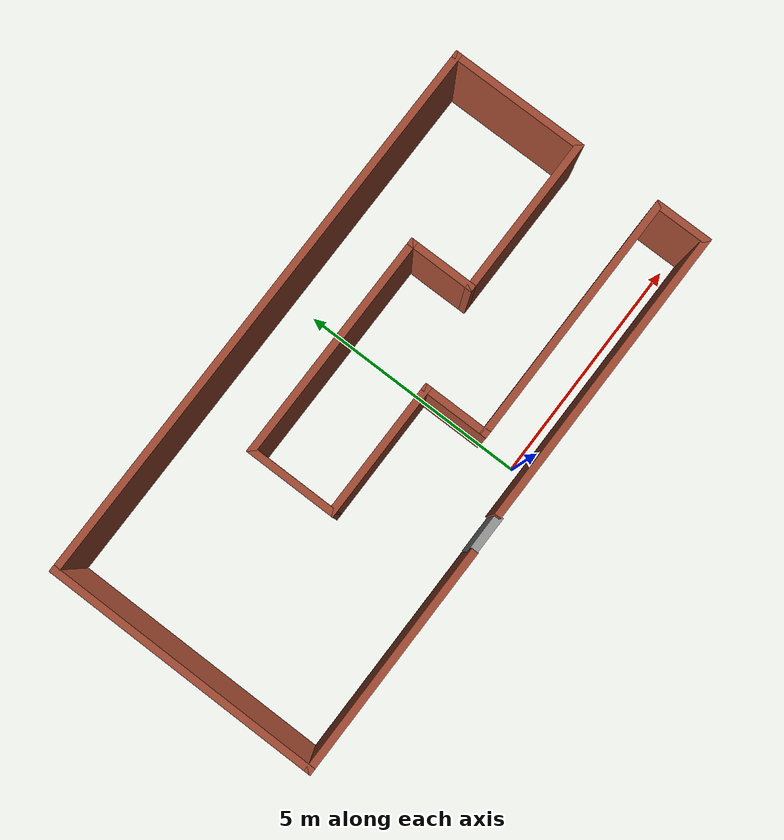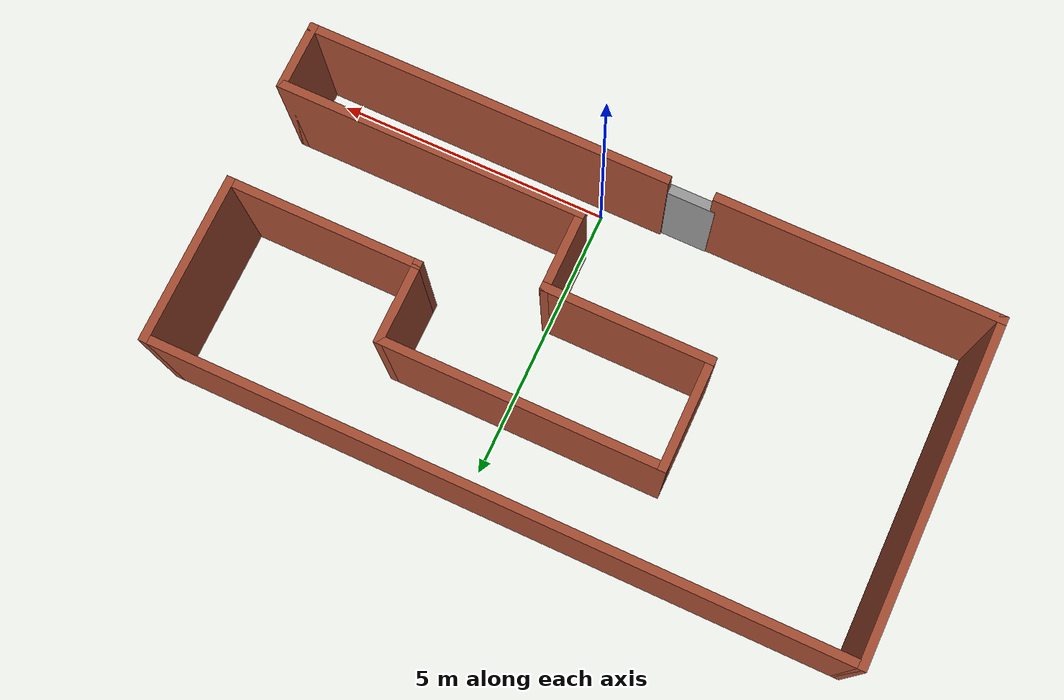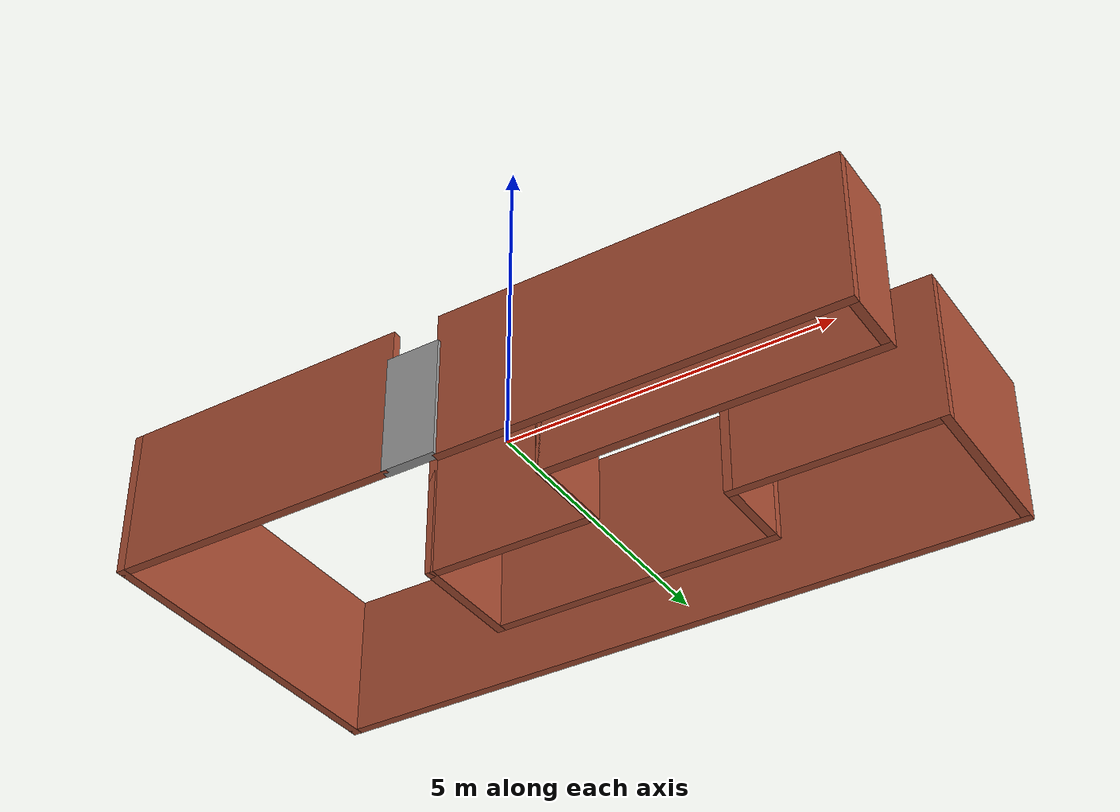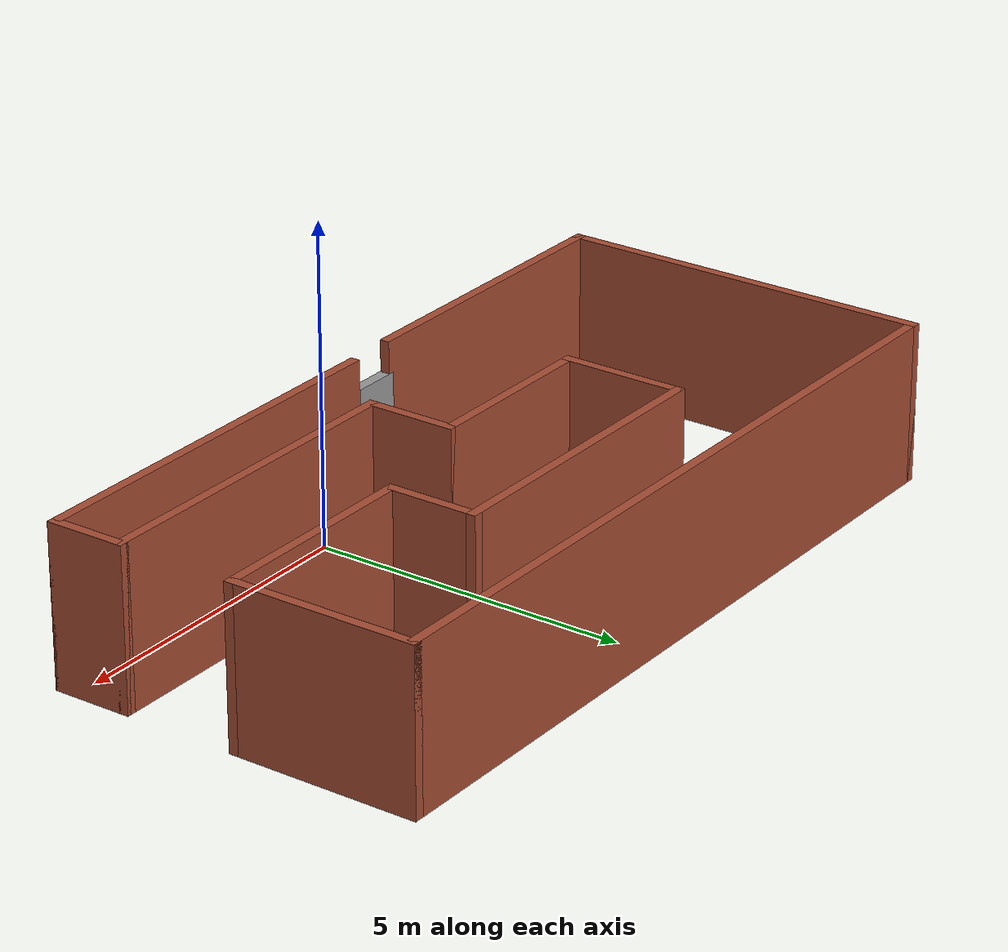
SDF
<?xml version='1.0'?>
<sdf version='1.6'>
  <model name='my_room'>
    <pose frame=''>-0.692338 2.64949 0 0 -0 0</pose>
    <link name='Door_0'>
      <collision name='Door_0_Collision'>
        <geometry>
          <box>
            <size>0.9 0.17 2</size>
          </box>
        </geometry>
        <pose frame=''>0 0 1 0 -0 0</pose>
      </collision>
      <visual name='Door_0_Visual'>
        <pose frame=''>0 0 1 0 -0 0</pose>
        <geometry>
          <box>
            <size>0.9 0.17 2</size>
          </box>
        </geometry>
        <material>
          <script>
            <uri>file://media/materials/scripts/gazebo.material</uri>
            <name>Gazebo/Grey</name>
          </script>
        </material>
      </visual>
      <pose frame=''>-0.763575 -2.925 0 0 -0 0</pose>
    </link>
    <link name='Wall_10'>
      <collision name='Wall_10_Collision'>
        <geometry>
          <box>
            <size>2 0.15 2.5</size>
          </box>
        </geometry>
        <pose frame=''>0 0 1.25 0 -0 0</pose>
      </collision>
      <visual name='Wall_10_Visual'>
        <pose frame=''>0 0 1.25 0 -0 0</pose>
        <geometry>
          <box>
            <size>2 0.15 2.5</size>
          </box>
        </geometry>
        <material>
          <script>
            <uri>file://media/materials/scripts/gazebo.material</uri>
            <name>Gazebo/Bricks</name>
          </script>
          <ambient>1 1 1 1</ambient>
        </material>
      </visual>
      <pose frame=''>-2.15 0.5 0 0 0 -1.5708</pose>
    </link>
    <link name='Wall_11'>
      <collision name='Wall_11_Collision'>
        <geometry>
          <box>
            <size>3 0.15 2.5</size>
          </box>
        </geometry>
        <pose frame=''>0 0 1.25 0 -0 0</pose>
      </collision>
      <visual name='Wall_11_Visual'>
        <pose frame=''>0 0 1.25 0 -0 0</pose>
        <geometry>
          <box>
            <size>3 0.15 2.5</size>
          </box>
        </geometry>
        <material>
          <script>
            <uri>file://media/materials/scripts/gazebo.material</uri>
            <name>Gazebo/Bricks</name>
          </script>
          <ambient>1 1 1 1</ambient>
        </material>
      </visual>
      <pose frame=''>-0.725 -0.425 0 0 -0 0</pose>
    </link>
    <link name='Wall_12'>
      <collision name='Wall_12_Collision'>
        <geometry>
          <box>
            <size>1.5 0.15 2.5</size>
          </box>
        </geometry>
        <pose frame=''>0 0 1.25 0 -0 0</pose>
      </collision>
      <visual name='Wall_12_Visual'>
        <pose frame=''>0 0 1.25 0 -0 0</pose>
        <geometry>
          <box>
            <size>1.5 0.15 2.5</size>
          </box>
        </geometry>
        <material>
          <script>
            <uri>file://media/materials/scripts/gazebo.material</uri>
            <name>Gazebo/Bricks</name>
          </script>
          <ambient>1 1 1 1</ambient>
        </material>
      </visual>
      <pose frame=''>0.7 -1.1 0 0 0 -1.5708</pose>
    </link>
    <link name='Wall_13'>
      <collision name='Wall_13_Collision'>
        <geometry>
          <box>
            <size>5.5 0.15 2.5</size>
          </box>
        </geometry>
        <pose frame=''>0 0 1.25 0 -0 0</pose>
      </collision>
      <visual name='Wall_13_Visual'>
        <pose frame=''>0 0 1.25 0 -0 0</pose>
        <geometry>
          <box>
            <size>5.5 0.15 2.5</size>
          </box>
        </geometry>
        <material>
          <script>
            <uri>file://media/materials/scripts/gazebo.material</uri>
            <name>Gazebo/Bricks</name>
          </script>
          <ambient>1 1 1 1</ambient>
        </material>
      </visual>
      <pose frame=''>3.375 -1.775 0 0 -0 0</pose>
    </link>
    <link name='Wall_14'>
      <collision name='Wall_14_Collision'>
        <geometry>
          <box>
            <size>1.25 0.15 2.5</size>
          </box>
        </geometry>
        <pose frame=''>0 0 1.25 0 -0 0</pose>
      </collision>
      <visual name='Wall_14_Visual'>
        <pose frame=''>0 0 1.25 0 -0 0</pose>
        <geometry>
          <box>
            <size>1.25 0.15 2.5</size>
          </box>
        </geometry>
        <material>
          <script>
            <uri>file://media/materials/scripts/gazebo.material</uri>
            <name>Gazebo/Bricks</name>
          </script>
          <ambient>1 1 1 1</ambient>
        </material>
      </visual>
      <pose frame=''>6.05 -2.325 0 0 0 -1.5708</pose>
    </link>
    <link name='Wall_15'>
      <collision name='Wall_15_Collision'>
        <geometry>
          <box>
            <size>6.5 0.15 2.5</size>
          </box>
        </geometry>
        <pose frame=''>0 0 1.25 0 -0 0</pose>
      </collision>
      <visual name='Wall_15_Visual'>
        <pose frame=''>0 0 1.25 0 -0 0</pose>
        <geometry>
          <box>
            <size>6.5 0.15 2.5</size>
          </box>
        </geometry>
        <material>
          <script>
            <uri>file://media/materials/scripts/gazebo.material</uri>
            <name>Gazebo/Bricks</name>
          </script>
          <ambient>1 1 1 1</ambient>
        </material>
      </visual>
      <pose frame=''>2.875 -2.875 0 0 -0 3.14159</pose>
    </link>
    <link name='Wall_3'>
      <collision name='Wall_3_Collision'>
        <geometry>
          <box>
            <size>5 0.15 2.5</size>
          </box>
        </geometry>
        <pose frame=''>0 0 1.25 0 -0 0</pose>
      </collision>
      <visual name='Wall_3_Visual'>
        <pose frame=''>0 0 1.25 0 -0 0</pose>
        <geometry>
          <box>
            <size>5 0.15 2.5</size>
          </box>
        </geometry>
        <material>
          <script>
            <uri>file://media/materials/scripts/gazebo.material</uri>
            <name>Gazebo/Bricks</name>
          </script>
          <ambient>0.996078 0.47451 0.0196078 1</ambient>
        </material>
      </visual>
      <pose frame=''>-3.625 -2.925 0 0 -0 3.14159</pose>
    </link>
    <link name='Wall_4'>
      <collision name='Wall_4_Collision'>
        <geometry>
          <box>
            <size>6 0.15 2.5</size>
          </box>
        </geometry>
        <pose frame=''>0 0 1.25 0 -0 0</pose>
      </collision>
      <visual name='Wall_4_Visual'>
        <pose frame=''>0 0 1.25 0 -0 0</pose>
        <geometry>
          <box>
            <size>6 0.15 2.5</size>
          </box>
        </geometry>
        <material>
          <script>
            <uri>file://media/materials/scripts/gazebo.material</uri>
            <name>Gazebo/Bricks</name>
          </script>
          <ambient>1 1 1 1</ambient>
        </material>
      </visual>
      <pose frame=''>-6.05 0 0 0 -0 1.5708</pose>
    </link>
    <link name='Wall_5'>
      <collision name='Wall_5_Collision'>
        <geometry>
          <box>
            <size>12.25 0.15 2.5</size>
          </box>
        </geometry>
        <pose frame=''>0 0 1.25 0 -0 0</pose>
      </collision>
      <visual name='Wall_5_Visual'>
        <pose frame=''>0 0 1.25 0 -0 0</pose>
        <geometry>
          <box>
            <size>12.25 0.15 2.5</size>
          </box>
        </geometry>
        <material>
          <script>
            <uri>file://media/materials/scripts/gazebo.material</uri>
            <name>Gazebo/Bricks</name>
          </script>
          <ambient>1 1 1 1</ambient>
        </material>
      </visual>
      <pose frame=''>0 2.925 0 0 -0 0</pose>
    </link>
    <link name='Wall_6'>
      <collision name='Wall_6_Collision'>
        <geometry>
          <box>
            <size>3 0.15 2.5</size>
          </box>
        </geometry>
        <pose frame=''>0 0 1.25 0 -0 0</pose>
      </collision>
      <visual name='Wall_6_Visual'>
        <pose frame=''>0 0 1.25 0 -0 0</pose>
        <geometry>
          <box>
            <size>3 0.15 2.5</size>
          </box>
        </geometry>
        <material>
          <script>
            <uri>file://media/materials/scripts/gazebo.material</uri>
            <name>Gazebo/Bricks</name>
          </script>
          <ambient>1 1 1 1</ambient>
        </material>
      </visual>
      <pose frame=''>6.05 1.5 0 0 0 -1.5708</pose>
    </link>
    <link name='Wall_7'>
      <collision name='Wall_7_Collision'>
        <geometry>
          <box>
            <size>3.5 0.15 2.5</size>
          </box>
        </geometry>
        <pose frame=''>0 0 1.25 0 -0 0</pose>
      </collision>
      <visual name='Wall_7_Visual'>
        <pose frame=''>0 0 1.25 0 -0 0</pose>
        <geometry>
          <box>
            <size>3.5 0.15 2.5</size>
          </box>
        </geometry>
        <material>
          <script>
            <uri>file://media/materials/scripts/gazebo.material</uri>
            <name>Gazebo/Bricks</name>
          </script>
          <ambient>1 1 1 1</ambient>
        </material>
      </visual>
      <pose frame=''>4.375 0.075 0 0 -0 3.14159</pose>
    </link>
    <link name='Wall_8'>
      <collision name='Wall_8_Collision'>
        <geometry>
          <box>
            <size>1.5 0.15 2.5</size>
          </box>
        </geometry>
        <pose frame=''>0 0 1.25 0 -0 0</pose>
      </collision>
      <visual name='Wall_8_Visual'>
        <pose frame=''>0 0 1.25 0 -0 0</pose>
        <geometry>
          <box>
            <size>1.5 0.15 2.5</size>
          </box>
        </geometry>
        <material>
          <script>
            <uri>file://media/materials/scripts/gazebo.material</uri>
            <name>Gazebo/Bricks</name>
          </script>
          <ambient>1 1 1 1</ambient>
        </material>
      </visual>
      <pose frame=''>2.7 0.75 0 0 -0 1.5708</pose>
    </link>
    <link name='Wall_9'>
      <collision name='Wall_9_Collision'>
        <geometry>
          <box>
            <size>5 0.15 2.5</size>
          </box>
        </geometry>
        <pose frame=''>0 0 1.25 0 -0 0</pose>
      </collision>
      <visual name='Wall_9_Visual'>
        <pose frame=''>0 0 1.25 0 -0 0</pose>
        <geometry>
          <box>
            <size>5 0.15 2.5</size>
          </box>
        </geometry>
        <material>
          <script>
            <uri>file://media/materials/scripts/gazebo.material</uri>
            <name>Gazebo/Bricks</name>
          </script>
          <ambient>1 1 1 1</ambient>
        </material>
      </visual>
      <pose frame=''>0.275 1.425 0 0 -0 3.14159</pose>
    </link>
    <static>1</static>
  </model>
</sdf>
